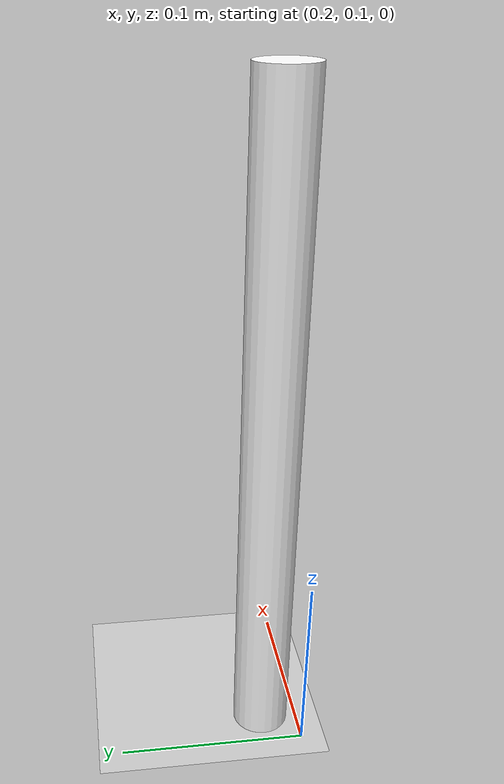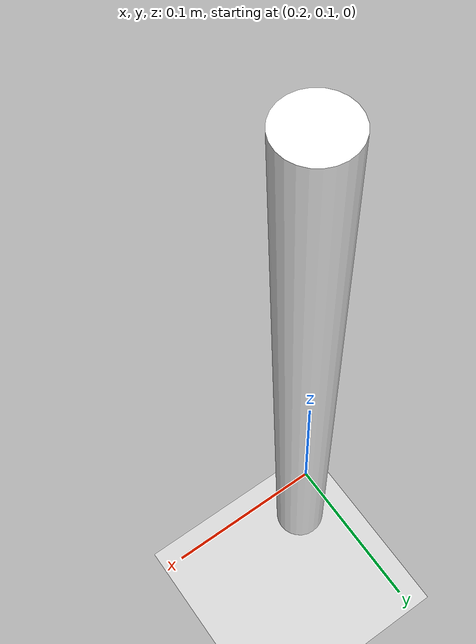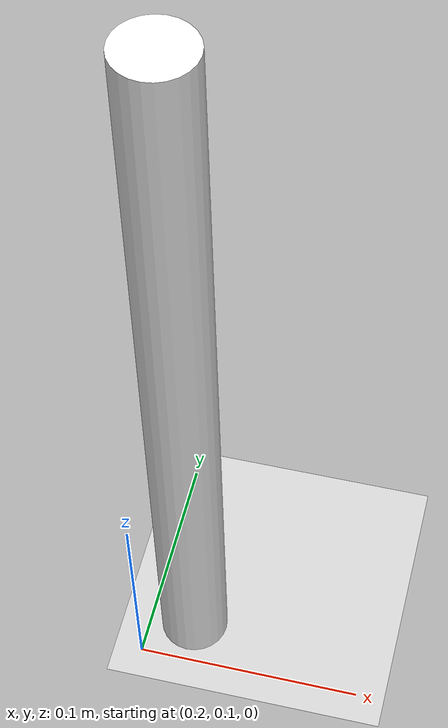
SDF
<?xml version="1.0"?>
<sdf version='1.10'>
  <world name='empty'>
    <physics name='1ms' type='ignored'>
      <max_step_size>0.005</max_step_size>
      <real_time_factor>1</real_time_factor>
      <real_time_update_rate>1000</real_time_update_rate>
    </physics>
    <plugin name='gz::sim::systems::Physics' filename='gz-sim-physics-system'/>
    <plugin name='gz::sim::systems::UserCommands' filename='gz-sim-user-commands-system'/>
    <plugin name='gz::sim::systems::SceneBroadcaster' filename='gz-sim-scene-broadcaster-system'/>
    <plugin name='gz::sim::systems::Contact' filename='gz-sim-contact-system'/>
    <plugin filename="gz-sim-sensors-system" name="gz::sim::systems::Sensors">
          <render_engine>ogre2</render_engine>
    </plugin>
    <plugin filename="gz-sim-imu-system" name="gz::sim::systems::Imu"> </plugin>
    <gravity>0 0 -9.8000000000000007</gravity>
    <magnetic_field>5.5644999999999998e-06 2.2875799999999999e-05 -4.2388400000000002e-05</magnetic_field>
    <atmosphere type='adiabatic'/>
    <scene>
      <ambient>0.400000006 0.400000006 0.400000006 1</ambient>
      <background>0.699999988 0.699999988 0.699999988 1</background>
      <shadows>true</shadows>
    </scene>

    <model name='cyl'>
      <pose>0.22 0.12 0.175 0 0 0</pose>
      <link name='box_link'>
        <inertial>
          <inertia>
            <ixx>0.16666</ixx>
            <ixy>0</ixy>
            <ixz>0</ixz>
            <iyy>0.16666</iyy>
            <iyz>0</iyz>
            <izz>0.16666</izz>
          </inertia>
          <mass>0.20</mass>
          <pose>0 0 0 0 0 0</pose>
        </inertial>
        <collision name='cyl_collision'>
          <geometry>
            <cylinder>
              <radius>0.015</radius>
              <length>0.35</length>
            </cylinder>
          </geometry>
          <surface>
            <friction>
              <ode/>
            </friction>
            <bounce/>
            <contact/>
          </surface>
        </collision>
        <visual name='cyl_visual'>
          <geometry>
            <cylinder>
              <radius>0.015</radius>
              <length>0.35</length>
            </cylinder>
          </geometry>
          <material>
            <ambient>1 1 1 1</ambient>
            <diffuse>1 1 1 1</diffuse>
            <specular>1 1 1 1</specular>
          </material>
        </visual>
        <pose>0 0 0 0 0 0</pose>
        <enable_wind>false</enable_wind>
      </link>
      <static>false</static>
      <self_collide>false</self_collide>
    </model>

    <model name='ground_plane'>
      <static>true</static>
      <link name='link'>
        <collision name='collision'>
          <geometry>
            <plane>
              <normal>0 0 1</normal>
              <size>100 100</size>
            </plane>
          </geometry>
          <surface>
            <friction>
              <ode/>
            </friction>
            <bounce/>
            <contact/>
          </surface>
        </collision>
        <visual name='visual'>
          <geometry>
            <plane>
              <normal>0 0 1</normal>
              <size>100 100</size>
            </plane>
          </geometry>
          <material>
            <ambient>0.800000012 0.800000012 0.800000012 1</ambient>
            <diffuse>0.800000012 0.800000012 0.800000012 1</diffuse>
            <specular>0.800000012 0.800000012 0.800000012 1</specular>
          </material>
        </visual>
        <pose>0 0 0 0 0 0</pose>
        <inertial>
          <pose>0 0 0 0 0 0</pose>
          <mass>1</mass>
          <inertia>
            <ixx>1</ixx>
            <ixy>0</ixy>
            <ixz>0</ixz>
            <iyy>1</iyy>
            <iyz>0</iyz>
            <izz>1</izz>
          </inertia>
        </inertial>
        <enable_wind>false</enable_wind>
      </link>
      <pose>0 0 0 0 0 0</pose>
      <self_collide>false</self_collide>
    </model>

    <light name='sun' type='directional'>
      <pose>0 0 10 0 0 0</pose>
      <cast_shadows>true</cast_shadows>
      <intensity>1</intensity>
      <direction>-0.5 0.10000000000000001 -0.90000000000000002</direction>
      <diffuse>0.800000012 0.800000012 0.800000012 1</diffuse>
      <specular>0.200000003 0.200000003 0.200000003 1</specular>
      <attenuation>
        <range>1000</range>
        <linear>0.01</linear>
        <constant>0.90000000000000002</constant>
        <quadratic>0.001</quadratic>
      </attenuation>
      <spot>
        <inner_angle>0</inner_angle>
        <outer_angle>0</outer_angle>
        <falloff>0</falloff>
      </spot>
    </light>

  </world>
</sdf>
